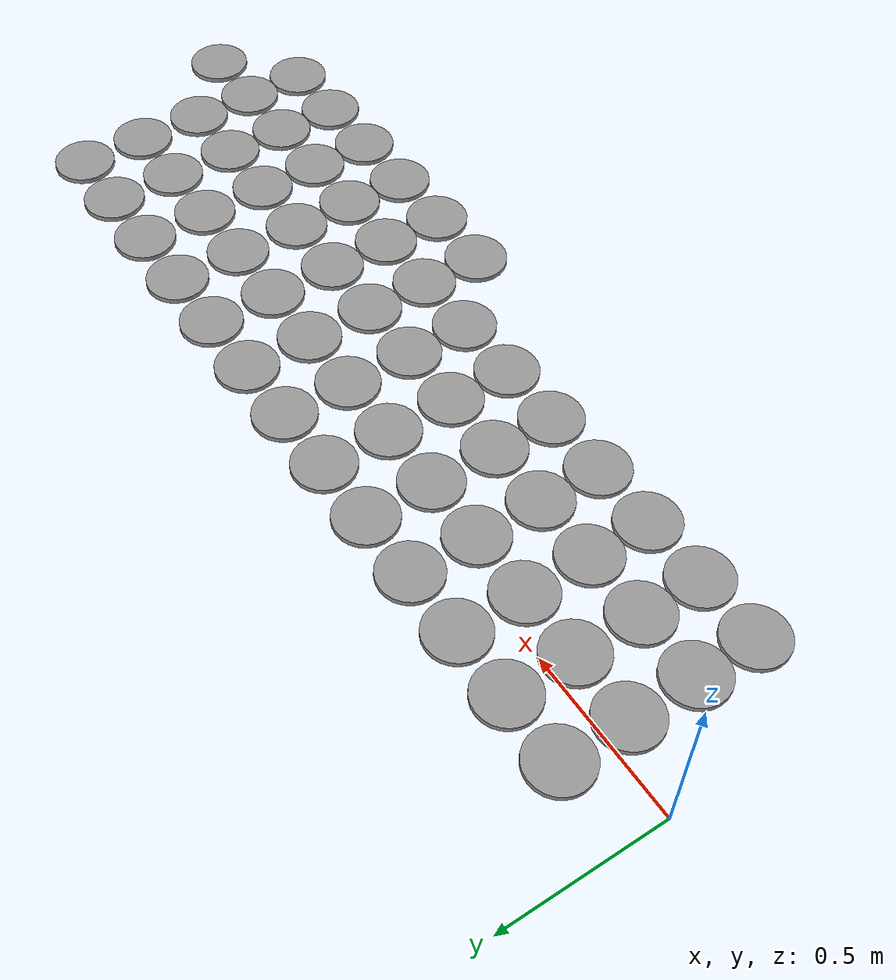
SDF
<sdf version="1.6">
 <world name="default">
  <model name="unit_cylinder_clone_375">
   <pose>0.25 -0.484923 0.008117 0 -0 0</pose>
   <link name="link">
    <inertial>
     <mass>1</mass>
     <inertia><ixx>0.145833</ixx><ixy>0</ixy><ixz>0</ixz><iyy>0.145833</iyy><iyz>0</iyz><izz>0.125</izz></inertia>
    </inertial>
    <collision name="collision">
     <geometry><cylinder><radius>0.0950718</radius><length>0.0162339</length></cylinder></geometry>
     <max_contacts>5</max_contacts>
    </collision>
    <visual name="visual">
     <geometry><cylinder><radius>0.0950718</radius><length>0.0162339</length></cylinder></geometry>
     <material>
      <script><name>Gazebo/Grey</name><uri>file://media/materials/scripts/gazebo.material</uri></script>
     </material>
    </visual>
   </link>
  </model>
  <model name="unit_cylinder_clone_376">
   <pose>0.25 -0.29 0.008117 0 -0 0</pose>
   <link name="link">
    <inertial>
     <mass>1</mass>
     <inertia><ixx>0.145833</ixx><ixy>0</ixy><ixz>0</ixz><iyy>0.145833</iyy><iyz>0</iyz><izz>0.125</izz></inertia>
    </inertial>
    <collision name="collision">
     <geometry><cylinder><radius>0.0950718</radius><length>0.0162339</length></cylinder></geometry>
     <max_contacts>5</max_contacts>
    </collision>
    <visual name="visual">
     <geometry><cylinder><radius>0.0950718</radius><length>0.0162339</length></cylinder></geometry>
     <material>
      <script><name>Gazebo/Grey</name><uri>file://media/materials/scripts/gazebo.material</uri></script>
     </material>
    </visual>
   </link>
  </model>
  <model name="unit_cylinder_clone_377">
   <pose>0.25 -0.08 0.008117 0 -0 0</pose>
   <link name="link">
    <inertial>
     <mass>1</mass>
     <inertia><ixx>0.145833</ixx><ixy>0</ixy><ixz>0</ixz><iyy>0.145833</iyy><iyz>0</iyz><izz>0.125</izz></inertia>
    </inertial>
    <collision name="collision">
     <geometry><cylinder><radius>0.0950718</radius><length>0.0162339</length></cylinder></geometry>
     <max_contacts>5</max_contacts>
    </collision>
    <visual name="visual">
     <geometry><cylinder><radius>0.0950718</radius><length>0.0162339</length></cylinder></geometry>
     <material>
      <script><name>Gazebo/Grey</name><uri>file://media/materials/scripts/gazebo.material</uri></script>
     </material>
    </visual>
   </link>
  </model>
  <model name="unit_cylinder_clone_378">
   <pose>0.25 0.13 0.008117 0 -0 0</pose>
   <link name="link">
    <inertial>
     <mass>1</mass>
     <inertia><ixx>0.145833</ixx><ixy>0</ixy><ixz>0</ixz><iyy>0.145833</iyy><iyz>0</iyz><izz>0.125</izz></inertia>
    </inertial>
    <collision name="collision">
     <geometry><cylinder><radius>0.0950718</radius><length>0.0162339</length></cylinder></geometry>
     <max_contacts>5</max_contacts>
    </collision>
    <visual name="visual">
     <geometry><cylinder><radius>0.0950718</radius><length>0.0162339</length></cylinder></geometry>
     <material>
      <script><name>Gazebo/Grey</name><uri>file://media/materials/scripts/gazebo.material</uri></script>
     </material>
    </visual>
   </link>
  </model>
  <model name="unit_cylinder_clone_380">
   <pose>0.46 -0.484923 0.008117 0 -0 0</pose>
   <link name="link">
    <inertial>
     <mass>1</mass>
     <inertia><ixx>0.145833</ixx><ixy>0</ixy><ixz>0</ixz><iyy>0.145833</iyy><iyz>0</iyz><izz>0.125</izz></inertia>
    </inertial>
    <collision name="collision">
     <geometry><cylinder><radius>0.0950718</radius><length>0.0162339</length></cylinder></geometry>
     <max_contacts>5</max_contacts>
    </collision>
    <visual name="visual">
     <geometry><cylinder><radius>0.0950718</radius><length>0.0162339</length></cylinder></geometry>
     <material>
      <script><name>Gazebo/Grey</name><uri>file://media/materials/scripts/gazebo.material</uri></script>
     </material>
    </visual>
   </link>
  </model>
  <model name="unit_cylinder_clone_381">
   <pose>0.46 -0.29 0.008117 0 -0 0</pose>
   <link name="link">
    <inertial>
     <mass>1</mass>
     <inertia><ixx>0.145833</ixx><ixy>0</ixy><ixz>0</ixz><iyy>0.145833</iyy><iyz>0</iyz><izz>0.125</izz></inertia>
    </inertial>
    <collision name="collision">
     <geometry><cylinder><radius>0.0950718</radius><length>0.0162339</length></cylinder></geometry>
     <max_contacts>5</max_contacts>
    </collision>
    <visual name="visual">
     <geometry><cylinder><radius>0.0950718</radius><length>0.0162339</length></cylinder></geometry>
     <material>
      <script><name>Gazebo/Grey</name><uri>file://media/materials/scripts/gazebo.material</uri></script>
     </material>
    </visual>
   </link>
  </model>
  <model name="unit_cylinder_clone_382">
   <pose>0.46 -0.08 0.008117 0 -0 0</pose>
   <link name="link">
    <inertial>
     <mass>1</mass>
     <inertia><ixx>0.145833</ixx><ixy>0</ixy><ixz>0</ixz><iyy>0.145833</iyy><iyz>0</iyz><izz>0.125</izz></inertia>
    </inertial>
    <collision name="collision">
     <geometry><cylinder><radius>0.0950718</radius><length>0.0162339</length></cylinder></geometry>
     <max_contacts>5</max_contacts>
    </collision>
    <visual name="visual">
     <geometry><cylinder><radius>0.0950718</radius><length>0.0162339</length></cylinder></geometry>
     <material>
      <script><name>Gazebo/Grey</name><uri>file://media/materials/scripts/gazebo.material</uri></script>
     </material>
    </visual>
   </link>
  </model>
  <model name="unit_cylinder_clone_383">
   <pose>0.46 0.13 0.008117 0 -0 0</pose>
   <link name="link">
    <inertial>
     <mass>1</mass>
     <inertia><ixx>0.145833</ixx><ixy>0</ixy><ixz>0</ixz><iyy>0.145833</iyy><iyz>0</iyz><izz>0.125</izz></inertia>
    </inertial>
    <collision name="collision">
     <geometry><cylinder><radius>0.0950718</radius><length>0.0162339</length></cylinder></geometry>
     <max_contacts>5</max_contacts>
    </collision>
    <visual name="visual">
     <geometry><cylinder><radius>0.0950718</radius><length>0.0162339</length></cylinder></geometry>
     <material>
      <script><name>Gazebo/Grey</name><uri>file://media/materials/scripts/gazebo.material</uri></script>
     </material>
    </visual>
   </link>
  </model>
  <model name="unit_cylinder_clone_385">
   <pose>0.67 -0.484923 0.008117 0 -0 0</pose>
   <link name="link">
    <inertial>
     <mass>1</mass>
     <inertia><ixx>0.145833</ixx><ixy>0</ixy><ixz>0</ixz><iyy>0.145833</iyy><iyz>0</iyz><izz>0.125</izz></inertia>
    </inertial>
    <collision name="collision">
     <geometry><cylinder><radius>0.0950718</radius><length>0.0162339</length></cylinder></geometry>
     <max_contacts>5</max_contacts>
    </collision>
    <visual name="visual">
     <geometry><cylinder><radius>0.0950718</radius><length>0.0162339</length></cylinder></geometry>
     <material>
      <script><name>Gazebo/Grey</name><uri>file://media/materials/scripts/gazebo.material</uri></script>
     </material>
    </visual>
   </link>
  </model>
  <model name="unit_cylinder_clone_386">
   <pose>0.67 -0.29 0.008117 0 -0 0</pose>
   <link name="link">
    <inertial>
     <mass>1</mass>
     <inertia><ixx>0.145833</ixx><ixy>0</ixy><ixz>0</ixz><iyy>0.145833</iyy><iyz>0</iyz><izz>0.125</izz></inertia>
    </inertial>
    <collision name="collision">
     <geometry><cylinder><radius>0.0950718</radius><length>0.0162339</length></cylinder></geometry>
     <max_contacts>5</max_contacts>
    </collision>
    <visual name="visual">
     <geometry><cylinder><radius>0.0950718</radius><length>0.0162339</length></cylinder></geometry>
     <material>
      <script><name>Gazebo/Grey</name><uri>file://media/materials/scripts/gazebo.material</uri></script>
     </material>
    </visual>
   </link>
  </model>
  <model name="unit_cylinder_clone_387">
   <pose>0.67 -0.08 0.008117 0 -0 0</pose>
   <link name="link">
    <inertial>
     <mass>1</mass>
     <inertia><ixx>0.145833</ixx><ixy>0</ixy><ixz>0</ixz><iyy>0.145833</iyy><iyz>0</iyz><izz>0.125</izz></inertia>
    </inertial>
    <collision name="collision">
     <geometry><cylinder><radius>0.0950718</radius><length>0.0162339</length></cylinder></geometry>
     <max_contacts>5</max_contacts>
    </collision>
    <visual name="visual">
     <geometry><cylinder><radius>0.0950718</radius><length>0.0162339</length></cylinder></geometry>
     <material>
      <script><name>Gazebo/Grey</name><uri>file://media/materials/scripts/gazebo.material</uri></script>
     </material>
    </visual>
   </link>
  </model>
  <model name="unit_cylinder_clone_388">
   <pose>0.67 0.13 0.008117 0 -0 0</pose>
   <link name="link">
    <inertial>
     <mass>1</mass>
     <inertia><ixx>0.145833</ixx><ixy>0</ixy><ixz>0</ixz><iyy>0.145833</iyy><iyz>0</iyz><izz>0.125</izz></inertia>
    </inertial>
    <collision name="collision">
     <geometry><cylinder><radius>0.0950718</radius><length>0.0162339</length></cylinder></geometry>
     <max_contacts>5</max_contacts>
    </collision>
    <visual name="visual">
     <geometry><cylinder><radius>0.0950718</radius><length>0.0162339</length></cylinder></geometry>
     <material>
      <script><name>Gazebo/Grey</name><uri>file://media/materials/scripts/gazebo.material</uri></script>
     </material>
    </visual>
   </link>
  </model>
  <model name="unit_cylinder_clone_390">
   <pose>0.88 -0.484923 0.008117 0 -0 0</pose>
   <link name="link">
    <inertial>
     <mass>1</mass>
     <inertia><ixx>0.145833</ixx><ixy>0</ixy><ixz>0</ixz><iyy>0.145833</iyy><iyz>0</iyz><izz>0.125</izz></inertia>
    </inertial>
    <collision name="collision">
     <geometry><cylinder><radius>0.0950718</radius><length>0.0162339</length></cylinder></geometry>
     <max_contacts>5</max_contacts>
    </collision>
    <visual name="visual">
     <geometry><cylinder><radius>0.0950718</radius><length>0.0162339</length></cylinder></geometry>
     <material>
      <script><name>Gazebo/Grey</name><uri>file://media/materials/scripts/gazebo.material</uri></script>
     </material>
    </visual>
   </link>
  </model>
  <model name="unit_cylinder_clone_391">
   <pose>0.88 -0.29 0.008117 0 -0 0</pose>
   <link name="link">
    <inertial>
     <mass>1</mass>
     <inertia><ixx>0.145833</ixx><ixy>0</ixy><ixz>0</ixz><iyy>0.145833</iyy><iyz>0</iyz><izz>0.125</izz></inertia>
    </inertial>
    <collision name="collision">
     <geometry><cylinder><radius>0.0950718</radius><length>0.0162339</length></cylinder></geometry>
     <max_contacts>5</max_contacts>
    </collision>
    <visual name="visual">
     <geometry><cylinder><radius>0.0950718</radius><length>0.0162339</length></cylinder></geometry>
     <material>
      <script><name>Gazebo/Grey</name><uri>file://media/materials/scripts/gazebo.material</uri></script>
     </material>
    </visual>
   </link>
  </model>
  <model name="unit_cylinder_clone_392">
   <pose>0.88 -0.08 0.008117 0 -0 0</pose>
   <link name="link">
    <inertial>
     <mass>1</mass>
     <inertia><ixx>0.145833</ixx><ixy>0</ixy><ixz>0</ixz><iyy>0.145833</iyy><iyz>0</iyz><izz>0.125</izz></inertia>
    </inertial>
    <collision name="collision">
     <geometry><cylinder><radius>0.0950718</radius><length>0.0162339</length></cylinder></geometry>
     <max_contacts>5</max_contacts>
    </collision>
    <visual name="visual">
     <geometry><cylinder><radius>0.0950718</radius><length>0.0162339</length></cylinder></geometry>
     <material>
      <script><name>Gazebo/Grey</name><uri>file://media/materials/scripts/gazebo.material</uri></script>
     </material>
    </visual>
   </link>
  </model>
  <model name="unit_cylinder_clone_393">
   <pose>0.88 0.13 0.008117 0 -0 0</pose>
   <link name="link">
    <inertial>
     <mass>1</mass>
     <inertia><ixx>0.145833</ixx><ixy>0</ixy><ixz>0</ixz><iyy>0.145833</iyy><iyz>0</iyz><izz>0.125</izz></inertia>
    </inertial>
    <collision name="collision">
     <geometry><cylinder><radius>0.0950718</radius><length>0.0162339</length></cylinder></geometry>
     <max_contacts>5</max_contacts>
    </collision>
    <visual name="visual">
     <geometry><cylinder><radius>0.0950718</radius><length>0.0162339</length></cylinder></geometry>
     <material>
      <script><name>Gazebo/Grey</name><uri>file://media/materials/scripts/gazebo.material</uri></script>
     </material>
    </visual>
   </link>
  </model>
  <model name="unit_cylinder_clone_395">
   <pose>1.09 -0.484923 0.008117 0 -0 0</pose>
   <link name="link">
    <inertial>
     <mass>1</mass>
     <inertia><ixx>0.145833</ixx><ixy>0</ixy><ixz>0</ixz><iyy>0.145833</iyy><iyz>0</iyz><izz>0.125</izz></inertia>
    </inertial>
    <collision name="collision">
     <geometry><cylinder><radius>0.0950718</radius><length>0.0162339</length></cylinder></geometry>
     <max_contacts>5</max_contacts>
    </collision>
    <visual name="visual">
     <geometry><cylinder><radius>0.0950718</radius><length>0.0162339</length></cylinder></geometry>
     <material>
      <script><name>Gazebo/Grey</name><uri>file://media/materials/scripts/gazebo.material</uri></script>
     </material>
    </visual>
   </link>
  </model>
  <model name="unit_cylinder_clone_396">
   <pose>1.09 -0.29 0.008117 0 -0 0</pose>
   <link name="link">
    <inertial>
     <mass>1</mass>
     <inertia><ixx>0.145833</ixx><ixy>0</ixy><ixz>0</ixz><iyy>0.145833</iyy><iyz>0</iyz><izz>0.125</izz></inertia>
    </inertial>
    <collision name="collision">
     <geometry><cylinder><radius>0.0950718</radius><length>0.0162339</length></cylinder></geometry>
     <max_contacts>5</max_contacts>
    </collision>
    <visual name="visual">
     <geometry><cylinder><radius>0.0950718</radius><length>0.0162339</length></cylinder></geometry>
     <material>
      <script><name>Gazebo/Grey</name><uri>file://media/materials/scripts/gazebo.material</uri></script>
     </material>
    </visual>
   </link>
  </model>
  <model name="unit_cylinder_clone_397">
   <pose>1.09 -0.08 0.008117 0 -0 0</pose>
   <link name="link">
    <inertial>
     <mass>1</mass>
     <inertia><ixx>0.145833</ixx><ixy>0</ixy><ixz>0</ixz><iyy>0.145833</iyy><iyz>0</iyz><izz>0.125</izz></inertia>
    </inertial>
    <collision name="collision">
     <geometry><cylinder><radius>0.0950718</radius><length>0.0162339</length></cylinder></geometry>
     <max_contacts>5</max_contacts>
    </collision>
    <visual name="visual">
     <geometry><cylinder><radius>0.0950718</radius><length>0.0162339</length></cylinder></geometry>
     <material>
      <script><name>Gazebo/Grey</name><uri>file://media/materials/scripts/gazebo.material</uri></script>
     </material>
    </visual>
   </link>
  </model>
  <model name="unit_cylinder_clone_398">
   <pose>1.09 0.13 0.008117 0 -0 0</pose>
   <link name="link">
    <inertial>
     <mass>1</mass>
     <inertia><ixx>0.145833</ixx><ixy>0</ixy><ixz>0</ixz><iyy>0.145833</iyy><iyz>0</iyz><izz>0.125</izz></inertia>
    </inertial>
    <collision name="collision">
     <geometry><cylinder><radius>0.0950718</radius><length>0.0162339</length></cylinder></geometry>
     <max_contacts>5</max_contacts>
    </collision>
    <visual name="visual">
     <geometry><cylinder><radius>0.0950718</radius><length>0.0162339</length></cylinder></geometry>
     <material>
      <script><name>Gazebo/Grey</name><uri>file://media/materials/scripts/gazebo.material</uri></script>
     </material>
    </visual>
   </link>
  </model>
  <model name="unit_cylinder_clone_400">
   <pose>1.3 -0.484923 0.008117 0 -0 0</pose>
   <link name="link">
    <inertial>
     <mass>1</mass>
     <inertia><ixx>0.145833</ixx><ixy>0</ixy><ixz>0</ixz><iyy>0.145833</iyy><iyz>0</iyz><izz>0.125</izz></inertia>
    </inertial>
    <collision name="collision">
     <geometry><cylinder><radius>0.0950718</radius><length>0.0162339</length></cylinder></geometry>
     <max_contacts>5</max_contacts>
    </collision>
    <visual name="visual">
     <geometry><cylinder><radius>0.0950718</radius><length>0.0162339</length></cylinder></geometry>
     <material>
      <script><name>Gazebo/Grey</name><uri>file://media/materials/scripts/gazebo.material</uri></script>
     </material>
    </visual>
   </link>
  </model>
  <model name="unit_cylinder_clone_401">
   <pose>1.3 -0.29 0.008117 0 -0 0</pose>
   <link name="link">
    <inertial>
     <mass>1</mass>
     <inertia><ixx>0.145833</ixx><ixy>0</ixy><ixz>0</ixz><iyy>0.145833</iyy><iyz>0</iyz><izz>0.125</izz></inertia>
    </inertial>
    <collision name="collision">
     <geometry><cylinder><radius>0.0950718</radius><length>0.0162339</length></cylinder></geometry>
     <max_contacts>5</max_contacts>
    </collision>
    <visual name="visual">
     <geometry><cylinder><radius>0.0950718</radius><length>0.0162339</length></cylinder></geometry>
     <material>
      <script><name>Gazebo/Grey</name><uri>file://media/materials/scripts/gazebo.material</uri></script>
     </material>
    </visual>
   </link>
  </model>
  <model name="unit_cylinder_clone_402">
   <pose>1.3 -0.08 0.008117 0 -0 0</pose>
   <link name="link">
    <inertial>
     <mass>1</mass>
     <inertia><ixx>0.145833</ixx><ixy>0</ixy><ixz>0</ixz><iyy>0.145833</iyy><iyz>0</iyz><izz>0.125</izz></inertia>
    </inertial>
    <collision name="collision">
     <geometry><cylinder><radius>0.0950718</radius><length>0.0162339</length></cylinder></geometry>
     <max_contacts>5</max_contacts>
    </collision>
    <visual name="visual">
     <geometry><cylinder><radius>0.0950718</radius><length>0.0162339</length></cylinder></geometry>
     <material>
      <script><name>Gazebo/Grey</name><uri>file://media/materials/scripts/gazebo.material</uri></script>
     </material>
    </visual>
   </link>
  </model>
  <model name="unit_cylinder_clone_403">
   <pose>1.3 0.13 0.008117 0 -0 0</pose>
   <link name="link">
    <inertial>
     <mass>1</mass>
     <inertia><ixx>0.145833</ixx><ixy>0</ixy><ixz>0</ixz><iyy>0.145833</iyy><iyz>0</iyz><izz>0.125</izz></inertia>
    </inertial>
    <collision name="collision">
     <geometry><cylinder><radius>0.0950718</radius><length>0.0162339</length></cylinder></geometry>
     <max_contacts>5</max_contacts>
    </collision>
    <visual name="visual">
     <geometry><cylinder><radius>0.0950718</radius><length>0.0162339</length></cylinder></geometry>
     <material>
      <script><name>Gazebo/Grey</name><uri>file://media/materials/scripts/gazebo.material</uri></script>
     </material>
    </visual>
   </link>
  </model>
  <model name="unit_cylinder_clone_405">
   <pose>1.51 -0.484923 0.008117 0 -0 0</pose>
   <link name="link">
    <inertial>
     <mass>1</mass>
     <inertia><ixx>0.145833</ixx><ixy>0</ixy><ixz>0</ixz><iyy>0.145833</iyy><iyz>0</iyz><izz>0.125</izz></inertia>
    </inertial>
    <collision name="collision">
     <geometry><cylinder><radius>0.0950718</radius><length>0.0162339</length></cylinder></geometry>
     <max_contacts>5</max_contacts>
    </collision>
    <visual name="visual">
     <geometry><cylinder><radius>0.0950718</radius><length>0.0162339</length></cylinder></geometry>
     <material>
      <script><name>Gazebo/Grey</name><uri>file://media/materials/scripts/gazebo.material</uri></script>
     </material>
    </visual>
   </link>
  </model>
  <model name="unit_cylinder_clone_406">
   <pose>1.51 -0.29 0.008117 0 -0 0</pose>
   <link name="link">
    <inertial>
     <mass>1</mass>
     <inertia><ixx>0.145833</ixx><ixy>0</ixy><ixz>0</ixz><iyy>0.145833</iyy><iyz>0</iyz><izz>0.125</izz></inertia>
    </inertial>
    <collision name="collision">
     <geometry><cylinder><radius>0.0950718</radius><length>0.0162339</length></cylinder></geometry>
     <max_contacts>5</max_contacts>
    </collision>
    <visual name="visual">
     <geometry><cylinder><radius>0.0950718</radius><length>0.0162339</length></cylinder></geometry>
     <material>
      <script><name>Gazebo/Grey</name><uri>file://media/materials/scripts/gazebo.material</uri></script>
     </material>
    </visual>
   </link>
  </model>
  <model name="unit_cylinder_clone_407">
   <pose>1.51 -0.08 0.008117 0 -0 0</pose>
   <link name="link">
    <inertial>
     <mass>1</mass>
     <inertia><ixx>0.145833</ixx><ixy>0</ixy><ixz>0</ixz><iyy>0.145833</iyy><iyz>0</iyz><izz>0.125</izz></inertia>
    </inertial>
    <collision name="collision">
     <geometry><cylinder><radius>0.0950718</radius><length>0.0162339</length></cylinder></geometry>
     <max_contacts>5</max_contacts>
    </collision>
    <visual name="visual">
     <geometry><cylinder><radius>0.0950718</radius><length>0.0162339</length></cylinder></geometry>
     <material>
      <script><name>Gazebo/Grey</name><uri>file://media/materials/scripts/gazebo.material</uri></script>
     </material>
    </visual>
   </link>
  </model>
  <model name="unit_cylinder_clone_408">
   <pose>1.51 0.13 0.008117 0 -0 0</pose>
   <link name="link">
    <inertial>
     <mass>1</mass>
     <inertia><ixx>0.145833</ixx><ixy>0</ixy><ixz>0</ixz><iyy>0.145833</iyy><iyz>0</iyz><izz>0.125</izz></inertia>
    </inertial>
    <collision name="collision">
     <geometry><cylinder><radius>0.0950718</radius><length>0.0162339</length></cylinder></geometry>
     <max_contacts>5</max_contacts>
    </collision>
    <visual name="visual">
     <geometry><cylinder><radius>0.0950718</radius><length>0.0162339</length></cylinder></geometry>
     <material>
      <script><name>Gazebo/Grey</name><uri>file://media/materials/scripts/gazebo.material</uri></script>
     </material>
    </visual>
   </link>
  </model>
  <model name="unit_cylinder_clone_410">
   <pose>1.72 -0.484923 0.008117 0 -0 0</pose>
   <link name="link">
    <inertial>
     <mass>1</mass>
     <inertia><ixx>0.145833</ixx><ixy>0</ixy><ixz>0</ixz><iyy>0.145833</iyy><iyz>0</iyz><izz>0.125</izz></inertia>
    </inertial>
    <collision name="collision">
     <geometry><cylinder><radius>0.0950718</radius><length>0.0162339</length></cylinder></geometry>
     <max_contacts>5</max_contacts>
    </collision>
    <visual name="visual">
     <geometry><cylinder><radius>0.0950718</radius><length>0.0162339</length></cylinder></geometry>
     <material>
      <script><name>Gazebo/Grey</name><uri>file://media/materials/scripts/gazebo.material</uri></script>
     </material>
    </visual>
   </link>
  </model>
  <model name="unit_cylinder_clone_411">
   <pose>1.72 -0.29 0.008117 0 -0 0</pose>
   <link name="link">
    <inertial>
     <mass>1</mass>
     <inertia><ixx>0.145833</ixx><ixy>0</ixy><ixz>0</ixz><iyy>0.145833</iyy><iyz>0</iyz><izz>0.125</izz></inertia>
    </inertial>
    <collision name="collision">
     <geometry><cylinder><radius>0.0950718</radius><length>0.0162339</length></cylinder></geometry>
     <max_contacts>5</max_contacts>
    </collision>
    <visual name="visual">
     <geometry><cylinder><radius>0.0950718</radius><length>0.0162339</length></cylinder></geometry>
     <material>
      <script><name>Gazebo/Grey</name><uri>file://media/materials/scripts/gazebo.material</uri></script>
     </material>
    </visual>
   </link>
  </model>
  <model name="unit_cylinder_clone_412">
   <pose>1.72 -0.08 0.008117 0 -0 0</pose>
   <link name="link">
    <inertial>
     <mass>1</mass>
     <inertia><ixx>0.145833</ixx><ixy>0</ixy><ixz>0</ixz><iyy>0.145833</iyy><iyz>0</iyz><izz>0.125</izz></inertia>
    </inertial>
    <collision name="collision">
     <geometry><cylinder><radius>0.0950718</radius><length>0.0162339</length></cylinder></geometry>
     <max_contacts>5</max_contacts>
    </collision>
    <visual name="visual">
     <geometry><cylinder><radius>0.0950718</radius><length>0.0162339</length></cylinder></geometry>
     <material>
      <script><name>Gazebo/Grey</name><uri>file://media/materials/scripts/gazebo.material</uri></script>
     </material>
    </visual>
   </link>
  </model>
  <model name="unit_cylinder_clone_413">
   <pose>1.72 0.13 0.008117 0 -0 0</pose>
   <link name="link">
    <inertial>
     <mass>1</mass>
     <inertia><ixx>0.145833</ixx><ixy>0</ixy><ixz>0</ixz><iyy>0.145833</iyy><iyz>0</iyz><izz>0.125</izz></inertia>
    </inertial>
    <collision name="collision">
     <geometry><cylinder><radius>0.0950718</radius><length>0.0162339</length></cylinder></geometry>
     <max_contacts>5</max_contacts>
    </collision>
    <visual name="visual">
     <geometry><cylinder><radius>0.0950718</radius><length>0.0162339</length></cylinder></geometry>
     <material>
      <script><name>Gazebo/Grey</name><uri>file://media/materials/scripts/gazebo.material</uri></script>
     </material>
    </visual>
   </link>
  </model>
  <model name="unit_cylinder_clone_415">
   <pose>1.93 -0.484923 0.008117 0 -0 0</pose>
   <link name="link">
    <inertial>
     <mass>1</mass>
     <inertia><ixx>0.145833</ixx><ixy>0</ixy><ixz>0</ixz><iyy>0.145833</iyy><iyz>0</iyz><izz>0.125</izz></inertia>
    </inertial>
    <collision name="collision">
     <geometry><cylinder><radius>0.0950718</radius><length>0.0162339</length></cylinder></geometry>
     <max_contacts>5</max_contacts>
    </collision>
    <visual name="visual">
     <geometry><cylinder><radius>0.0950718</radius><length>0.0162339</length></cylinder></geometry>
     <material>
      <script><name>Gazebo/Grey</name><uri>file://media/materials/scripts/gazebo.material</uri></script>
     </material>
    </visual>
   </link>
  </model>
  <model name="unit_cylinder_clone_416">
   <pose>1.93 -0.29 0.008117 0 -0 0</pose>
   <link name="link">
    <inertial>
     <mass>1</mass>
     <inertia><ixx>0.145833</ixx><ixy>0</ixy><ixz>0</ixz><iyy>0.145833</iyy><iyz>0</iyz><izz>0.125</izz></inertia>
    </inertial>
    <collision name="collision">
     <geometry><cylinder><radius>0.0950718</radius><length>0.0162339</length></cylinder></geometry>
     <max_contacts>5</max_contacts>
    </collision>
    <visual name="visual">
     <geometry><cylinder><radius>0.0950718</radius><length>0.0162339</length></cylinder></geometry>
     <material>
      <script><name>Gazebo/Grey</name><uri>file://media/materials/scripts/gazebo.material</uri></script>
     </material>
    </visual>
   </link>
  </model>
  <model name="unit_cylinder_clone_417">
   <pose>1.93 -0.08 0.008117 0 -0 0</pose>
   <link name="link">
    <inertial>
     <mass>1</mass>
     <inertia><ixx>0.145833</ixx><ixy>0</ixy><ixz>0</ixz><iyy>0.145833</iyy><iyz>0</iyz><izz>0.125</izz></inertia>
    </inertial>
    <collision name="collision">
     <geometry><cylinder><radius>0.0950718</radius><length>0.0162339</length></cylinder></geometry>
     <max_contacts>5</max_contacts>
    </collision>
    <visual name="visual">
     <geometry><cylinder><radius>0.0950718</radius><length>0.0162339</length></cylinder></geometry>
     <material>
      <script><name>Gazebo/Grey</name><uri>file://media/materials/scripts/gazebo.material</uri></script>
     </material>
    </visual>
   </link>
  </model>
  <model name="unit_cylinder_clone_418">
   <pose>1.93 0.13 0.008117 0 -0 0</pose>
   <link name="link">
    <inertial>
     <mass>1</mass>
     <inertia><ixx>0.145833</ixx><ixy>0</ixy><ixz>0</ixz><iyy>0.145833</iyy><iyz>0</iyz><izz>0.125</izz></inertia>
    </inertial>
    <collision name="collision">
     <geometry><cylinder><radius>0.0950718</radius><length>0.0162339</length></cylinder></geometry>
     <max_contacts>5</max_contacts>
    </collision>
    <visual name="visual">
     <geometry><cylinder><radius>0.0950718</radius><length>0.0162339</length></cylinder></geometry>
     <material>
      <script><name>Gazebo/Grey</name><uri>file://media/materials/scripts/gazebo.material</uri></script>
     </material>
    </visual>
   </link>
  </model>
  <model name="unit_cylinder_clone_420">
   <pose>2.14 -0.484923 0.008117 0 -0 0</pose>
   <link name="link">
    <inertial>
     <mass>1</mass>
     <inertia><ixx>0.145833</ixx><ixy>0</ixy><ixz>0</ixz><iyy>0.145833</iyy><iyz>0</iyz><izz>0.125</izz></inertia>
    </inertial>
    <collision name="collision">
     <geometry><cylinder><radius>0.0950718</radius><length>0.0162339</length></cylinder></geometry>
     <max_contacts>5</max_contacts>
    </collision>
    <visual name="visual">
     <geometry><cylinder><radius>0.0950718</radius><length>0.0162339</length></cylinder></geometry>
     <material>
      <script><name>Gazebo/Grey</name><uri>file://media/materials/scripts/gazebo.material</uri></script>
     </material>
    </visual>
   </link>
  </model>
  <model name="unit_cylinder_clone_421">
   <pose>2.14 -0.29 0.008117 0 -0 0</pose>
   <link name="link">
    <inertial>
     <mass>1</mass>
     <inertia><ixx>0.145833</ixx><ixy>0</ixy><ixz>0</ixz><iyy>0.145833</iyy><iyz>0</iyz><izz>0.125</izz></inertia>
    </inertial>
    <collision name="collision">
     <geometry><cylinder><radius>0.0950718</radius><length>0.0162339</length></cylinder></geometry>
     <max_contacts>5</max_contacts>
    </collision>
    <visual name="visual">
     <geometry><cylinder><radius>0.0950718</radius><length>0.0162339</length></cylinder></geometry>
     <material>
      <script><name>Gazebo/Grey</name><uri>file://media/materials/scripts/gazebo.material</uri></script>
     </material>
    </visual>
   </link>
  </model>
  <model name="unit_cylinder_clone_422">
   <pose>2.14 -0.08 0.008117 0 -0 0</pose>
   <link name="link">
    <inertial>
     <mass>1</mass>
     <inertia><ixx>0.145833</ixx><ixy>0</ixy><ixz>0</ixz><iyy>0.145833</iyy><iyz>0</iyz><izz>0.125</izz></inertia>
    </inertial>
    <collision name="collision">
     <geometry><cylinder><radius>0.0950718</radius><length>0.0162339</length></cylinder></geometry>
     <max_contacts>5</max_contacts>
    </collision>
    <visual name="visual">
     <geometry><cylinder><radius>0.0950718</radius><length>0.0162339</length></cylinder></geometry>
     <material>
      <script><name>Gazebo/Grey</name><uri>file://media/materials/scripts/gazebo.material</uri></script>
     </material>
    </visual>
   </link>
  </model>
  <model name="unit_cylinder_clone_423">
   <pose>2.14 0.13 0.008117 0 -0 0</pose>
   <link name="link">
    <inertial>
     <mass>1</mass>
     <inertia><ixx>0.145833</ixx><ixy>0</ixy><ixz>0</ixz><iyy>0.145833</iyy><iyz>0</iyz><izz>0.125</izz></inertia>
    </inertial>
    <collision name="collision">
     <geometry><cylinder><radius>0.0950718</radius><length>0.0162339</length></cylinder></geometry>
     <max_contacts>5</max_contacts>
    </collision>
    <visual name="visual">
     <geometry><cylinder><radius>0.0950718</radius><length>0.0162339</length></cylinder></geometry>
     <material>
      <script><name>Gazebo/Grey</name><uri>file://media/materials/scripts/gazebo.material</uri></script>
     </material>
    </visual>
   </link>
  </model>
  <model name="unit_cylinder_clone_425">
   <pose>2.35 -0.484923 0.008117 0 -0 0</pose>
   <link name="link">
    <inertial>
     <mass>1</mass>
     <inertia><ixx>0.145833</ixx><ixy>0</ixy><ixz>0</ixz><iyy>0.145833</iyy><iyz>0</iyz><izz>0.125</izz></inertia>
    </inertial>
    <collision name="collision">
     <geometry><cylinder><radius>0.0950718</radius><length>0.0162339</length></cylinder></geometry>
     <max_contacts>5</max_contacts>
    </collision>
    <visual name="visual">
     <geometry><cylinder><radius>0.0950718</radius><length>0.0162339</length></cylinder></geometry>
     <material>
      <script><name>Gazebo/Grey</name><uri>file://media/materials/scripts/gazebo.material</uri></script>
     </material>
    </visual>
   </link>
  </model>
  <model name="unit_cylinder_clone_426">
   <pose>2.35 -0.29 0.008117 0 -0 0</pose>
   <link name="link">
    <inertial>
     <mass>1</mass>
     <inertia><ixx>0.145833</ixx><ixy>0</ixy><ixz>0</ixz><iyy>0.145833</iyy><iyz>0</iyz><izz>0.125</izz></inertia>
    </inertial>
    <collision name="collision">
     <geometry><cylinder><radius>0.0950718</radius><length>0.0162339</length></cylinder></geometry>
     <max_contacts>5</max_contacts>
    </collision>
    <visual name="visual">
     <geometry><cylinder><radius>0.0950718</radius><length>0.0162339</length></cylinder></geometry>
     <material>
      <script><name>Gazebo/Grey</name><uri>file://media/materials/scripts/gazebo.material</uri></script>
     </material>
    </visual>
   </link>
  </model>
  <model name="unit_cylinder_clone_427">
   <pose>2.35 -0.08 0.008117 0 -0 0</pose>
   <link name="link">
    <inertial>
     <mass>1</mass>
     <inertia><ixx>0.145833</ixx><ixy>0</ixy><ixz>0</ixz><iyy>0.145833</iyy><iyz>0</iyz><izz>0.125</izz></inertia>
    </inertial>
    <collision name="collision">
     <geometry><cylinder><radius>0.0950718</radius><length>0.0162339</length></cylinder></geometry>
     <max_contacts>5</max_contacts>
    </collision>
    <visual name="visual">
     <geometry><cylinder><radius>0.0950718</radius><length>0.0162339</length></cylinder></geometry>
     <material>
      <script><name>Gazebo/Grey</name><uri>file://media/materials/scripts/gazebo.material</uri></script>
     </material>
    </visual>
   </link>
  </model>
  <model name="unit_cylinder_clone_428">
   <pose>2.35 0.13 0.008117 0 -0 0</pose>
   <link name="link">
    <inertial>
     <mass>1</mass>
     <inertia><ixx>0.145833</ixx><ixy>0</ixy><ixz>0</ixz><iyy>0.145833</iyy><iyz>0</iyz><izz>0.125</izz></inertia>
    </inertial>
    <collision name="collision">
     <geometry><cylinder><radius>0.0950718</radius><length>0.0162339</length></cylinder></geometry>
     <max_contacts>5</max_contacts>
    </collision>
    <visual name="visual">
     <geometry><cylinder><radius>0.0950718</radius><length>0.0162339</length></cylinder></geometry>
     <material>
      <script><name>Gazebo/Grey</name><uri>file://media/materials/scripts/gazebo.material</uri></script>
     </material>
    </visual>
   </link>
  </model>
  <model name="unit_cylinder_clone_430">
   <pose>2.56 -0.484923 0.008117 0 -0 0</pose>
   <link name="link">
    <inertial>
     <mass>1</mass>
     <inertia><ixx>0.145833</ixx><ixy>0</ixy><ixz>0</ixz><iyy>0.145833</iyy><iyz>0</iyz><izz>0.125</izz></inertia>
    </inertial>
    <collision name="collision">
     <geometry><cylinder><radius>0.0950718</radius><length>0.0162339</length></cylinder></geometry>
     <max_contacts>5</max_contacts>
    </collision>
    <visual name="visual">
     <geometry><cylinder><radius>0.0950718</radius><length>0.0162339</length></cylinder></geometry>
     <material>
      <script><name>Gazebo/Grey</name><uri>file://media/materials/scripts/gazebo.material</uri></script>
     </material>
    </visual>
   </link>
  </model>
  <model name="unit_cylinder_clone_431">
   <pose>2.56 -0.29 0.008117 0 -0 0</pose>
   <link name="link">
    <inertial>
     <mass>1</mass>
     <inertia><ixx>0.145833</ixx><ixy>0</ixy><ixz>0</ixz><iyy>0.145833</iyy><iyz>0</iyz><izz>0.125</izz></inertia>
    </inertial>
    <collision name="collision">
     <geometry><cylinder><radius>0.0950718</radius><length>0.0162339</length></cylinder></geometry>
     <max_contacts>5</max_contacts>
    </collision>
    <visual name="visual">
     <geometry><cylinder><radius>0.0950718</radius><length>0.0162339</length></cylinder></geometry>
     <material>
      <script><name>Gazebo/Grey</name><uri>file://media/materials/scripts/gazebo.material</uri></script>
     </material>
    </visual>
   </link>
  </model>
  <model name="unit_cylinder_clone_432">
   <pose>2.56 -0.08 0.008117 0 -0 0</pose>
   <link name="link">
    <inertial>
     <mass>1</mass>
     <inertia><ixx>0.145833</ixx><ixy>0</ixy><ixz>0</ixz><iyy>0.145833</iyy><iyz>0</iyz><izz>0.125</izz></inertia>
    </inertial>
    <collision name="collision">
     <geometry><cylinder><radius>0.0950718</radius><length>0.0162339</length></cylinder></geometry>
     <max_contacts>5</max_contacts>
    </collision>
    <visual name="visual">
     <geometry><cylinder><radius>0.0950718</radius><length>0.0162339</length></cylinder></geometry>
     <material>
      <script><name>Gazebo/Grey</name><uri>file://media/materials/scripts/gazebo.material</uri></script>
     </material>
    </visual>
   </link>
  </model>
  <model name="unit_cylinder_clone_433">
   <pose>2.56 0.13 0.008117 0 -0 0</pose>
   <link name="link">
    <inertial>
     <mass>1</mass>
     <inertia><ixx>0.145833</ixx><ixy>0</ixy><ixz>0</ixz><iyy>0.145833</iyy><iyz>0</iyz><izz>0.125</izz></inertia>
    </inertial>
    <collision name="collision">
     <geometry><cylinder><radius>0.0950718</radius><length>0.0162339</length></cylinder></geometry>
     <max_contacts>5</max_contacts>
    </collision>
    <visual name="visual">
     <geometry><cylinder><radius>0.0950718</radius><length>0.0162339</length></cylinder></geometry>
     <material>
      <script><name>Gazebo/Grey</name><uri>file://media/materials/scripts/gazebo.material</uri></script>
     </material>
    </visual>
   </link>
  </model>
  <model name="unit_cylinder_clone_435">
   <pose>2.77 -0.484923 0.008117 0 -0 0</pose>
   <link name="link">
    <inertial>
     <mass>1</mass>
     <inertia><ixx>0.145833</ixx><ixy>0</ixy><ixz>0</ixz><iyy>0.145833</iyy><iyz>0</iyz><izz>0.125</izz></inertia>
    </inertial>
    <collision name="collision">
     <geometry><cylinder><radius>0.0950718</radius><length>0.0162339</length></cylinder></geometry>
     <max_contacts>5</max_contacts>
    </collision>
    <visual name="visual">
     <geometry><cylinder><radius>0.0950718</radius><length>0.0162339</length></cylinder></geometry>
     <material>
      <script><name>Gazebo/Grey</name><uri>file://media/materials/scripts/gazebo.material</uri></script>
     </material>
    </visual>
   </link>
  </model>
  <model name="unit_cylinder_clone_436">
   <pose>2.77 -0.29 0.008117 0 -0 0</pose>
   <link name="link">
    <inertial>
     <mass>1</mass>
     <inertia><ixx>0.145833</ixx><ixy>0</ixy><ixz>0</ixz><iyy>0.145833</iyy><iyz>0</iyz><izz>0.125</izz></inertia>
    </inertial>
    <collision name="collision">
     <geometry><cylinder><radius>0.0950718</radius><length>0.0162339</length></cylinder></geometry>
     <max_contacts>5</max_contacts>
    </collision>
    <visual name="visual">
     <geometry><cylinder><radius>0.0950718</radius><length>0.0162339</length></cylinder></geometry>
     <material>
      <script><name>Gazebo/Grey</name><uri>file://media/materials/scripts/gazebo.material</uri></script>
     </material>
    </visual>
   </link>
  </model>
  <model name="unit_cylinder_clone_437">
   <pose>2.77 -0.08 0.008117 0 -0 0</pose>
   <link name="link">
    <inertial>
     <mass>1</mass>
     <inertia><ixx>0.145833</ixx><ixy>0</ixy><ixz>0</ixz><iyy>0.145833</iyy><iyz>0</iyz><izz>0.125</izz></inertia>
    </inertial>
    <collision name="collision">
     <geometry><cylinder><radius>0.0950718</radius><length>0.0162339</length></cylinder></geometry>
     <max_contacts>5</max_contacts>
    </collision>
    <visual name="visual">
     <geometry><cylinder><radius>0.0950718</radius><length>0.0162339</length></cylinder></geometry>
     <material>
      <script><name>Gazebo/Grey</name><uri>file://media/materials/scripts/gazebo.material</uri></script>
     </material>
    </visual>
   </link>
  </model>
  <model name="unit_cylinder_clone_438">
   <pose>2.77 0.13 0.008117 0 -0 0</pose>
   <link name="link">
    <inertial>
     <mass>1</mass>
     <inertia><ixx>0.145833</ixx><ixy>0</ixy><ixz>0</ixz><iyy>0.145833</iyy><iyz>0</iyz><izz>0.125</izz></inertia>
    </inertial>
    <collision name="collision">
     <geometry><cylinder><radius>0.0950718</radius><length>0.0162339</length></cylinder></geometry>
     <max_contacts>5</max_contacts>
    </collision>
    <visual name="visual">
     <geometry><cylinder><radius>0.0950718</radius><length>0.0162339</length></cylinder></geometry>
     <material>
      <script><name>Gazebo/Grey</name><uri>file://media/materials/scripts/gazebo.material</uri></script>
     </material>
    </visual>
   </link>
  </model>
  <model name="unit_cylinder_clone_440">
   <pose>2.98 -0.484923 0.008117 0 -0 0</pose>
   <link name="link">
    <inertial>
     <mass>1</mass>
     <inertia><ixx>0.145833</ixx><ixy>0</ixy><ixz>0</ixz><iyy>0.145833</iyy><iyz>0</iyz><izz>0.125</izz></inertia>
    </inertial>
    <collision name="collision">
     <geometry><cylinder><radius>0.0950718</radius><length>0.0162339</length></cylinder></geometry>
     <max_contacts>5</max_contacts>
    </collision>
    <visual name="visual">
     <geometry><cylinder><radius>0.0950718</radius><length>0.0162339</length></cylinder></geometry>
     <material>
      <script><name>Gazebo/Grey</name><uri>file://media/materials/scripts/gazebo.material</uri></script>
     </material>
    </visual>
   </link>
  </model>
  <model name="unit_cylinder_clone_664">
   <pose>1.72 -0.675077 0.008117 -0 -0 -0</pose>
   <link name="link">
    <inertial>
     <mass>1</mass>
     <inertia><ixx>0.145833</ixx><ixy>0</ixy><ixz>0</ixz><iyy>0.145833</iyy><iyz>0</iyz><izz>0.125</izz></inertia>
    </inertial>
    <collision name="collision">
     <geometry><cylinder><radius>0.0950718</radius><length>0.0162339</length></cylinder></geometry>
     <max_contacts>5</max_contacts>
    </collision>
    <visual name="visual">
     <geometry><cylinder><radius>0.0950718</radius><length>0.0162339</length></cylinder></geometry>
     <material>
      <script><name>Gazebo/Grey</name><uri>file://media/materials/scripts/gazebo.material</uri></script>
     </material>
    </visual>
   </link>
  </model>
  <model name="unit_cylinder_clone_669">
   <pose>1.93 -0.675077 0.008117 -0 -0 -0</pose>
   <link name="link">
    <inertial>
     <mass>1</mass>
     <inertia><ixx>0.145833</ixx><ixy>0</ixy><ixz>0</ixz><iyy>0.145833</iyy><iyz>0</iyz><izz>0.125</izz></inertia>
    </inertial>
    <collision name="collision">
     <geometry><cylinder><radius>0.0950718</radius><length>0.0162339</length></cylinder></geometry>
     <max_contacts>5</max_contacts>
    </collision>
    <visual name="visual">
     <geometry><cylinder><radius>0.0950718</radius><length>0.0162339</length></cylinder></geometry>
     <material>
      <script><name>Gazebo/Grey</name><uri>file://media/materials/scripts/gazebo.material</uri></script>
     </material>
    </visual>
   </link>
  </model>
  <model name="unit_cylinder_clone_674">
   <pose>2.14 -0.675077 0.008117 -0 -0 -0</pose>
   <link name="link">
    <inertial>
     <mass>1</mass>
     <inertia><ixx>0.145833</ixx><ixy>0</ixy><ixz>0</ixz><iyy>0.145833</iyy><iyz>0</iyz><izz>0.125</izz></inertia>
    </inertial>
    <collision name="collision">
     <geometry><cylinder><radius>0.0950718</radius><length>0.0162339</length></cylinder></geometry>
     <max_contacts>5</max_contacts>
    </collision>
    <visual name="visual">
     <geometry><cylinder><radius>0.0950718</radius><length>0.0162339</length></cylinder></geometry>
     <material>
      <script><name>Gazebo/Grey</name><uri>file://media/materials/scripts/gazebo.material</uri></script>
     </material>
    </visual>
   </link>
  </model>
  <model name="unit_cylinder_clone_679">
   <pose>2.35 -0.675077 0.008117 -0 -0 -0</pose>
   <link name="link">
    <inertial>
     <mass>1</mass>
     <inertia><ixx>0.145833</ixx><ixy>0</ixy><ixz>0</ixz><iyy>0.145833</iyy><iyz>0</iyz><izz>0.125</izz></inertia>
    </inertial>
    <collision name="collision">
     <geometry><cylinder><radius>0.0950718</radius><length>0.0162339</length></cylinder></geometry>
     <max_contacts>5</max_contacts>
    </collision>
    <visual name="visual">
     <geometry><cylinder><radius>0.0950718</radius><length>0.0162339</length></cylinder></geometry>
     <material>
      <script><name>Gazebo/Grey</name><uri>file://media/materials/scripts/gazebo.material</uri></script>
     </material>
    </visual>
   </link>
  </model>
  <model name="unit_cylinder_clone_684">
   <pose>2.56 -0.675077 0.008117 -0 -0 -0</pose>
   <link name="link">
    <inertial>
     <mass>1</mass>
     <inertia><ixx>0.145833</ixx><ixy>0</ixy><ixz>0</ixz><iyy>0.145833</iyy><iyz>0</iyz><izz>0.125</izz></inertia>
    </inertial>
    <collision name="collision">
     <geometry><cylinder><radius>0.0950718</radius><length>0.0162339</length></cylinder></geometry>
     <max_contacts>5</max_contacts>
    </collision>
    <visual name="visual">
     <geometry><cylinder><radius>0.0950718</radius><length>0.0162339</length></cylinder></geometry>
     <material>
      <script><name>Gazebo/Grey</name><uri>file://media/materials/scripts/gazebo.material</uri></script>
     </material>
    </visual>
   </link>
  </model>
  <model name="unit_cylinder_clone_689">
   <pose>2.77 -0.675077 0.008117 -0 -0 -0</pose>
   <link name="link">
    <inertial>
     <mass>1</mass>
     <inertia><ixx>0.145833</ixx><ixy>0</ixy><ixz>0</ixz><iyy>0.145833</iyy><iyz>0</iyz><izz>0.125</izz></inertia>
    </inertial>
    <collision name="collision">
     <geometry><cylinder><radius>0.0950718</radius><length>0.0162339</length></cylinder></geometry>
     <max_contacts>5</max_contacts>
    </collision>
    <visual name="visual">
     <geometry><cylinder><radius>0.0950718</radius><length>0.0162339</length></cylinder></geometry>
     <material>
      <script><name>Gazebo/Grey</name><uri>file://media/materials/scripts/gazebo.material</uri></script>
     </material>
    </visual>
   </link>
  </model>
 </world>
</sdf>
